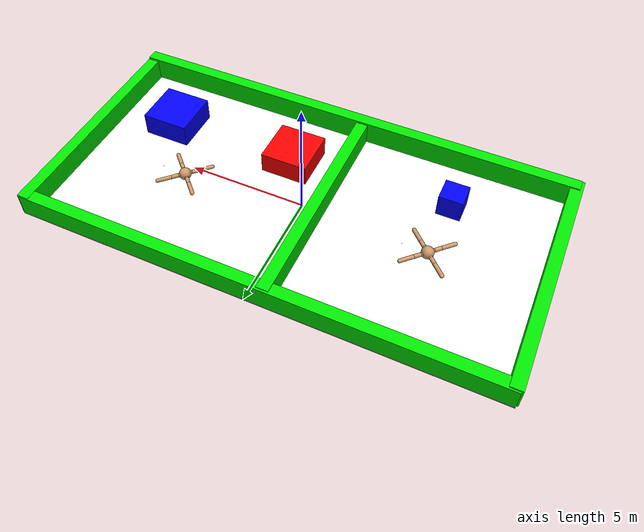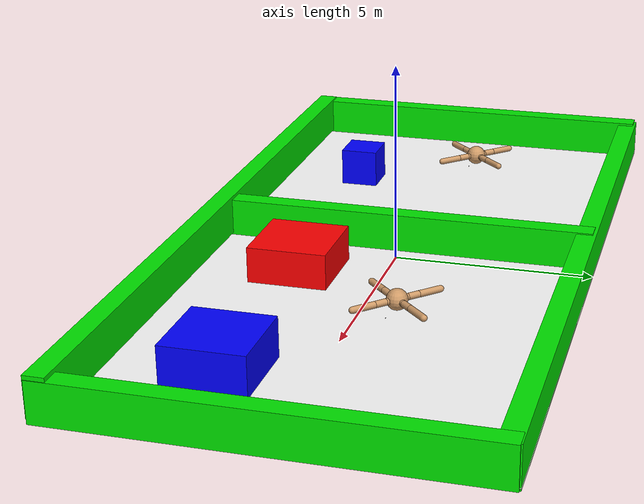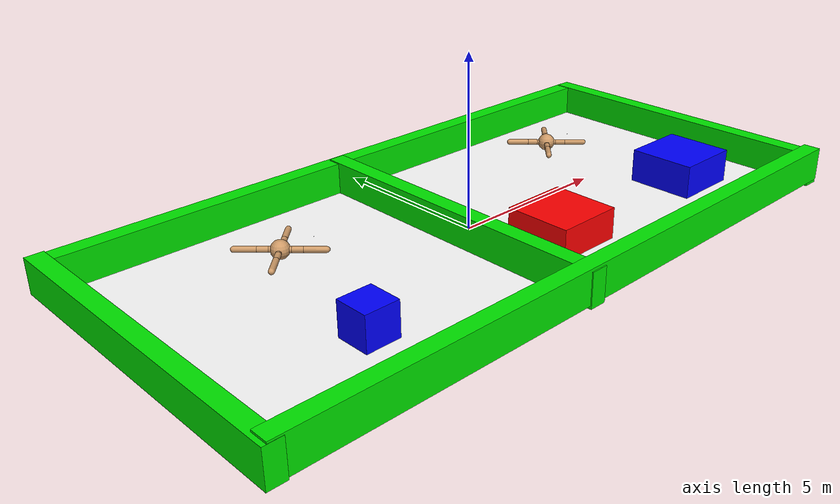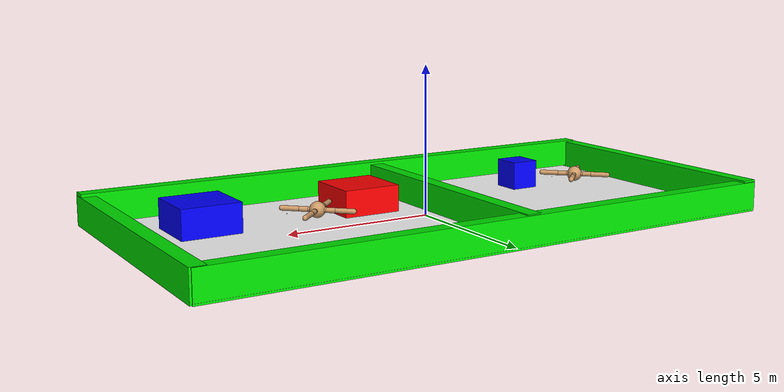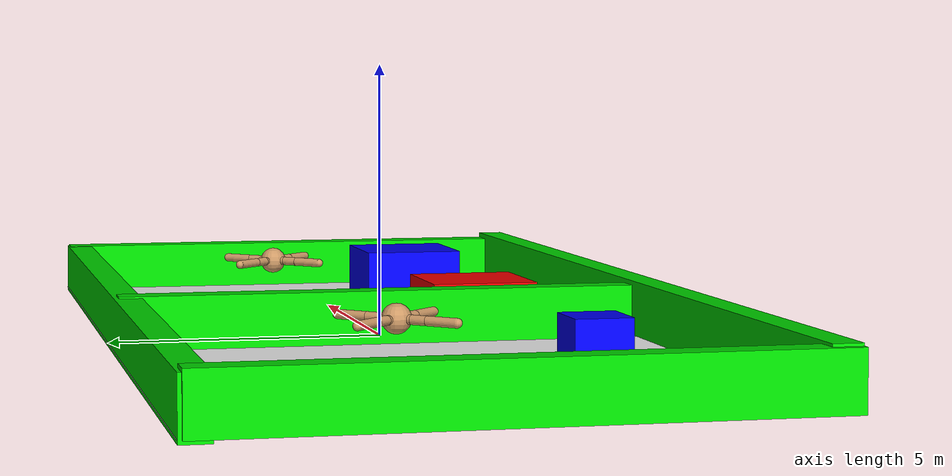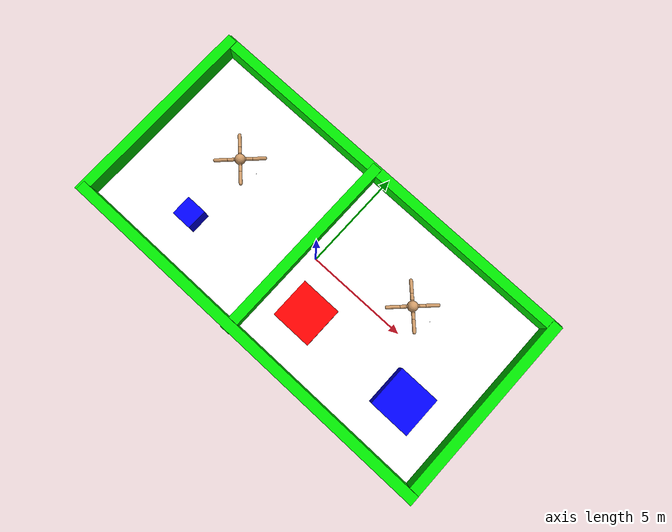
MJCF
<mujoco>
  <default>
    <joint armature="1" damping="1" limited="true"/>
    <geom density="5.0" friction="1 0.5 0.5" margin="0.01" rgba="0.8 0.6 0.4 1"/>
  </default>
  <worldbody>
    <light diffuse=".5 .5 .5" pos="0 0 3" dir="0 0 -1" />
    <body pos="0 0 0" name="">
      <geom type="plane" size="10 5 1.110223E-16" euler="0 0 0" rgba="255 255 255 1" name="" />
    </body>
    <body pos="0.01862761 -4.816084 0.5215917" name="">
      <geom type="box" size="10 0.25 0.5" euler="0 0 0" rgba="0 .9 0 1" name="border1_geom" />
    </body>
    <body pos="-0.02937651 4.738263 0.4082346" name="">
      <geom type="box" size="10 0.25 0.5" euler="0 0 0" rgba="0 .9 0 1" name="border2_geom" />
    </body>
    <body pos="9.789262 -0.04495001 0.4216571" name="">
      <geom type="box" size="0.25 5 0.5" euler="0 0 0" rgba="0 .9 0 1" name="border3_geom" />
    </body>
    <body pos="-9.848948 -0.07438982 0.4721622" name="">
      <geom type="box" size="0.25 5 0.5" euler="0 0 0" rgba="0 .9 0 1" name="border4_geom" />
    </body>
    <body pos="-0.7310539 -0.09776664 0.4394875" name="">
      <geom type="box" size="0.25 5 0.5" euler="0 0 0" rgba="0 .9 0 1" name="border5_geom" />
    </body>
    <body pos="7.02852 -2.071592 0.4710507" name="choice_1">
      <geom type="box" size="1 1 0.5" euler="0 0 0" rgba="0 0 255 1" name="choice_1_geom" />
    </body>
    <body pos="1.373154 -2.135309 0.3841939" name="choice_2">
      <geom type="box" size="1 1 0.5" euler="0 0 0" rgba="255 0 0 1" name="choice_2_geom" />
    </body>
    <body pos="-5.522553 -2.403258 0.4737153" name="reference">
      <geom type="box" size="0.5 0.5 0.5" euler="0 0 0" rgba="0 0 255 1" name="reference_geom" />
    </body>
    <body name="sender" pos="-5.522553 0.9194446 1">
      <camera name="sender_camera" pos="0 -0.6 0" euler="90 180 0"/>
      <geom name="sender_geom" pos="0 0 0" size="0.25" type="sphere"/>
      <site name="sender_sensor" pos="1 0 0" size="0.01"/>
      <joint armature="0" damping="0" limited="false" margin="0.01" name="root" pos="0 0 0" type="free"/>
      <body name="front_left_leg" pos="0 0 0">
        <geom fromto="0.0 0.0 0.0 0.2 0.2 0.0" name="aux_1_geom" size="0.08" type="capsule"/>
        <body name="aux_1" pos="0.2 0.2 0">
          <joint axis="0 0 1" name="hip_1" pos="0.0 0.0 0.0" range="-30 30" type="hinge"/>
          <geom fromto="0.0 0.0 0.0 0.2 0.2 0.0" name="left_leg_geom" size="0.08" type="capsule"/>
          <body pos="0.2 0.2 0">
            <joint axis="-1 1 0" name="ankle_1" pos="0.0 0.0 0.0" range="30 70" type="hinge"/>
            <geom fromto="0.0 0.0 0.0 0.4 0.4 0.0" name="left_ankle_geom" size="0.08" type="capsule"/>
          </body>
        </body>
      </body>
      <body name="front_right_leg" pos="0 0 0">
        <geom fromto="0.0 0.0 0.0 -0.2 0.2 0.0" name="aux_2_geom" size="0.08" type="capsule"/>
        <body name="aux_2" pos="-0.2 0.2 0">
          <joint axis="0 0 1" name="hip_2" pos="0.0 0.0 0.0" range="-30 30" type="hinge"/>
          <geom fromto="0.0 0.0 0.0 -0.2 0.2 0.0" name="right_leg_geom" size="0.08" type="capsule"/>
          <body pos="-0.2 0.2 0">
            <joint axis="1 1 0" name="ankle_2" pos="0.0 0.0 0.0" range="-70 -30" type="hinge"/>
            <geom fromto="0.0 0.0 0.0 -0.4 0.4 0.0" name="right_ankle_geom" size="0.08" type="capsule"/>
          </body>
        </body>
      </body>
      <body name="back_leg" pos="0 0 0">
        <geom fromto="0.0 0.0 0.0 -0.2 -0.2 0.0" name="aux_3_geom" size="0.08" type="capsule"/>
        <body name="aux_3" pos="-0.2 -0.2 0">
          <joint axis="0 0 1" name="hip_3" pos="0.0 0.0 0.0" range="-30 30" type="hinge"/>
          <geom fromto="0.0 0.0 0.0 -0.2 -0.2 0.0" name="back_leg_geom" size="0.08" type="capsule"/>
          <body pos="-0.2 -0.2 0">
            <joint axis="-1 1 0" name="ankle_3" pos="0.0 0.0 0.0" range="-70 -30" type="hinge"/>
            <geom fromto="0.0 0.0 0.0 -0.4 -0.4 0.0" name="third_ankle_geom" size="0.08" type="capsule"/>
          </body>
        </body>
      </body>
      <body name="right_back_leg" pos="0 0 0">
        <geom fromto="0.0 0.0 0.0 0.2 -0.2 0.0" name="aux_4_geom" size="0.08" type="capsule"/>
        <body name="aux_4" pos="0.2 -0.2 0">
          <joint axis="0 0 1" name="hip_4" pos="0.0 0.0 0.0" range="-30 30" type="hinge"/>
          <geom fromto="0.0 0.0 0.0 0.2 -0.2 0.0" name="rightback_leg_geom" size="0.08" type="capsule"/>
          <body pos="0.2 -0.2 0">
            <joint axis="1 1 0" name="ankle_4" pos="0.0 0.0 0.0" range="30 70" type="hinge"/>
            <geom fromto="0.0 0.0 0.0 0.4 -0.4 0.0" name="fourth_ankle_geom" size="0.08" type="capsule"/>
          </body>
        </body>
      </body>
    </body>
    <body name="receiver" pos="4.595446 1.222577 1">
      <camera name="receiver_camera" pos="0 -0.6 0" euler="90 180 0"/>
      <geom name="receiver_geom" pos="0 0 0" size="0.25" type="sphere"/>
      <site name="receiver_sensor" pos="1 0 0" size="0.01"/>
      <joint armature="0" damping="0" limited="false" margin="0.01" name="root_2" pos="0 0 0" type="free"/>
      <body name="front_left_leg_2" pos="0 0 0">
        <geom fromto="0.0 0.0 0.0 0.2 0.2 0.0" name="aux_1_geom_2" size="0.08" type="capsule"/>
        <body name="aux_1_2" pos="0.2 0.2 0">
          <joint axis="0 0 1" name="hip_1_2" pos="0.0 0.0 0.0" range="-30 30" type="hinge"/>
          <geom fromto="0.0 0.0 0.0 0.2 0.2 0.0" name="left_leg_geom_2" size="0.08" type="capsule"/>
          <body pos="0.2 0.2 0">
            <joint axis="-1 1 0" name="ankle_1_2" pos="0.0 0.0 0.0" range="30 70" type="hinge"/>
            <geom fromto="0.0 0.0 0.0 0.4 0.4 0.0" name="left_ankle_geom_2" size="0.08" type="capsule"/>
          </body>
        </body>
      </body>
      <body name="front_right_leg_2" pos="0 0 0">
        <geom fromto="0.0 0.0 0.0 -0.2 0.2 0.0" name="aux_2_geom_2" size="0.08" type="capsule"/>
        <body name="aux_2_2" pos="-0.2 0.2 0">
          <joint axis="0 0 1" name="hip_2_2" pos="0.0 0.0 0.0" range="-30 30" type="hinge"/>
          <geom fromto="0.0 0.0 0.0 -0.2 0.2 0.0" name="right_leg_geom_2" size="0.08" type="capsule"/>
          <body pos="-0.2 0.2 0">
            <joint axis="1 1 0" name="ankle_2_2" pos="0.0 0.0 0.0" range="-70 -30" type="hinge"/>
            <geom fromto="0.0 0.0 0.0 -0.4 0.4 0.0" name="right_ankle_geom_2" size="0.08" type="capsule"/>
          </body>
        </body>
      </body>
      <body name="back_leg_2" pos="0 0 0">
        <geom fromto="0.0 0.0 0.0 -0.2 -0.2 0.0" name="aux_3_geom_2" size="0.08" type="capsule"/>
        <body name="aux_3_2" pos="-0.2 -0.2 0">
          <joint axis="0 0 1" name="hip_3_2" pos="0.0 0.0 0.0" range="-30 30" type="hinge"/>
          <geom fromto="0.0 0.0 0.0 -0.2 -0.2 0.0" name="back_leg_geom_2" size="0.08" type="capsule"/>
          <body pos="-0.2 -0.2 0">
            <joint axis="-1 1 0" name="ankle_3_2" pos="0.0 0.0 0.0" range="-70 -30" type="hinge"/>
            <geom fromto="0.0 0.0 0.0 -0.4 -0.4 0.0" name="third_ankle_geom_2" size="0.08" type="capsule"/>
          </body>
        </body>
      </body>
      <body name="right_back_leg_2" pos="0 0 0">
        <geom fromto="0.0 0.0 0.0 0.2 -0.2 0.0" name="aux_4_geom_2" size="0.08" type="capsule"/>
        <body name="aux_4_2" pos="0.2 -0.2 0">
          <joint axis="0 0 1" name="hip_4_2" pos="0.0 0.0 0.0" range="-30 30" type="hinge"/>
          <geom fromto="0.0 0.0 0.0 0.2 -0.2 0.0" name="rightback_leg_geom_2" size="0.08" type="capsule"/>
          <body pos="0.2 -0.2 0">
            <joint axis="1 1 0" name="ankle_4_2" pos="0.0 0.0 0.0" range="30 70" type="hinge"/>
            <geom fromto="0.0 0.0 0.0 0.4 -0.4 0.0" name="fourth_ankle_geom_2" size="0.08" type="capsule"/>
          </body>
        </body>
      </body>
    </body>
  </worldbody>
  <sensor>
    <rangefinder name="sender_rangefinder" site="sender_sensor" cutoff="20" />
    <rangefinder name="receiver_rangefinder" site="receiver_sensor" cutoff="20" />
    <touch name="sender_touch" site="sender_sensor" cutoff="20" />
    <touch name="receiver_touch" site="receiver_sensor" cutoff="20" />
    <accelerometer name="sender_accelerometer" site="sender_sensor" cutoff="5" />
    <accelerometer name="receiver_accelerometer" site="receiver_sensor" cutoff="5" />
  </sensor>

  <actuator>
    <motor ctrllimited="true" ctrlrange="-1.0 1.0" joint="hip_4" gear="150"/>
    <motor ctrllimited="true" ctrlrange="-1.0 1.0" joint="ankle_4" gear="150"/>
    <motor ctrllimited="true" ctrlrange="-1.0 1.0" joint="hip_1" gear="150"/>
    <motor ctrllimited="true" ctrlrange="-1.0 1.0" joint="ankle_1" gear="150"/>
    <motor ctrllimited="true" ctrlrange="-1.0 1.0" joint="hip_2" gear="150"/>
    <motor ctrllimited="true" ctrlrange="-1.0 1.0" joint="ankle_2" gear="150"/>
    <motor ctrllimited="true" ctrlrange="-1.0 1.0" joint="hip_3" gear="150"/>
    <motor ctrllimited="true" ctrlrange="-1.0 1.0" joint="ankle_3" gear="150"/>
    <motor ctrllimited="true" ctrlrange="-1.0 1.0" joint="hip_4_2" gear="150"/>
    <motor ctrllimited="true" ctrlrange="-1.0 1.0" joint="ankle_4_2" gear="150"/>
    <motor ctrllimited="true" ctrlrange="-1.0 1.0" joint="hip_1_2" gear="150"/>
    <motor ctrllimited="true" ctrlrange="-1.0 1.0" joint="ankle_1_2" gear="150"/>
    <motor ctrllimited="true" ctrlrange="-1.0 1.0" joint="hip_2_2" gear="150"/>
    <motor ctrllimited="true" ctrlrange="-1.0 1.0" joint="ankle_2_2" gear="150"/>
    <motor ctrllimited="true" ctrlrange="-1.0 1.0" joint="hip_3_2" gear="150"/>
    <motor ctrllimited="true" ctrlrange="-1.0 1.0" joint="ankle_3_2" gear="150"/>
  </actuator>
</mujoco>
